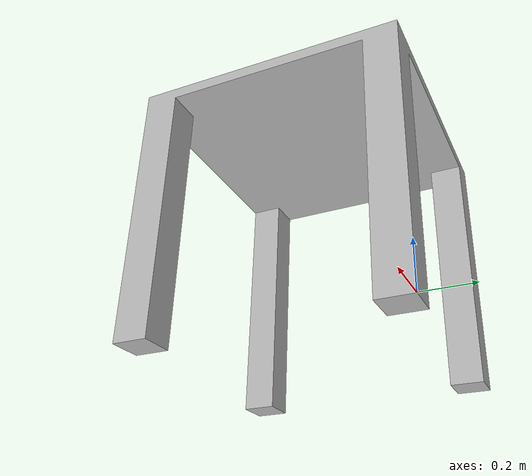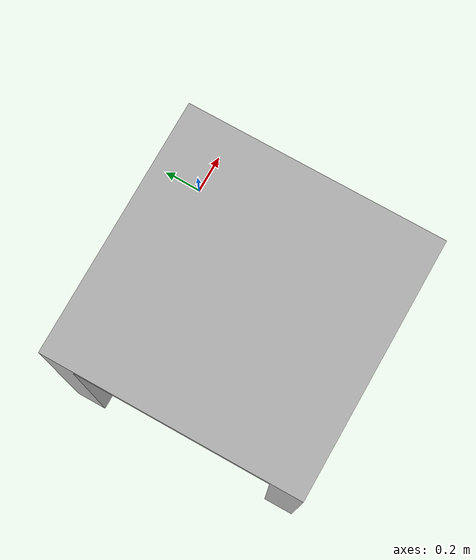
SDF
<?xml version='1.0'?>
<sdf version='1.6'>
  <model name='terrain-highplate_1_2'>
    <static>true</static>
    <link name='base_link'>
      <pose frame=''>0 0 0 0 -0 0</pose>
      <inertial>
        <pose frame=''>-0.6 -0.6 0.821154 0 -0 0</pose>
        <mass>82.485</mass>
        <inertia>
          <ixx>30.1124</ixx>
          <ixy>9.42714e-15</ixy>
          <ixz>2.10969e-14</ixz>
          <iyy>30.1124</iyy>
          <iyz>1.13072e-14</iyz>
          <izz>35.1196</izz>
        </inertia>
      </inertial>
      <collision name='base_link_collision'>
        <pose frame=''>0 0 0 0 -0 0</pose>
        <geometry>
          <mesh>
            <scale>1 1 1</scale>
            <uri>model://terrain-highplate_1_2/meshes/base_link.STL</uri>
          </mesh>
        </geometry>
        <surface>
            <contact>
              <collide_bitmask>65535</collide_bitmask>
              <ode/>
            </contact>
            <friction>
              <ode>
                <mu>10</mu>
                <mu2>10</mu2>
              </ode>
              <torsional>
                <ode/>
              </torsional>
            </friction>
            <bounce/>
          </surface>
      </collision>
      <visual name='base_link_visual'>
        <pose frame=''>0 0 0 0 -0 0</pose>
        <geometry>
          <mesh>
            <scale>1 1 1</scale>
            <uri>model://terrain-highplate_1_2/meshes/base_link.STL</uri>
          </mesh>
        </geometry>
      </visual>
    </link>
  </model>
</sdf>
